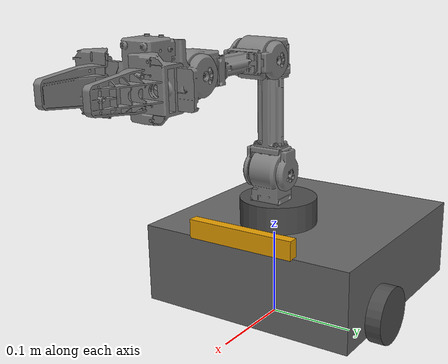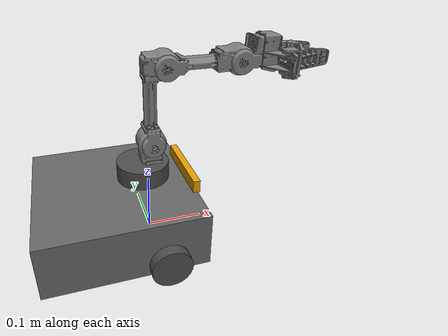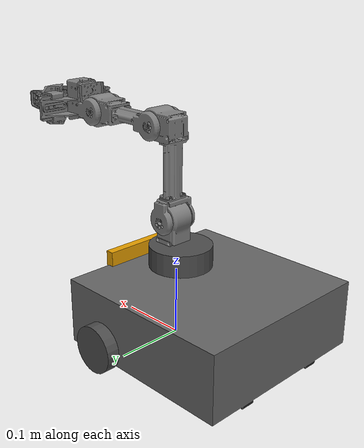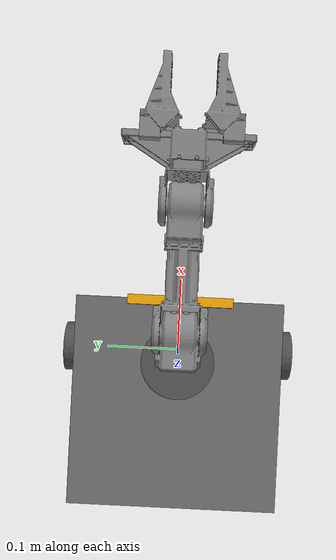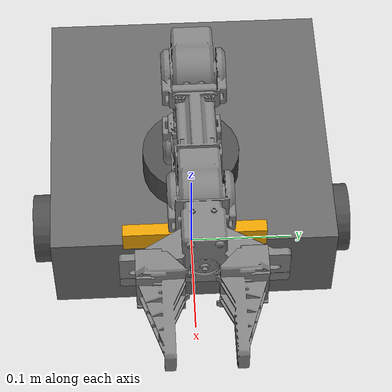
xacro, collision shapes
<?xml version="1.0"?>
<!-- Open_Manipulator Chain -->
<robot name="open_manipulator_chain_with_tb3" xmlns:xacro="http://www.ros.org/wiki/xacro">

  <!-- Include TurtleBot3 Waffle URDF -->
  <xacro:include filename="$(find turtlebot3_description)/urdf/turtlebot3_waffle_naked.urdf.xacro" />

  <!-- Include OpenManipulator Chain Gazebo Parameter -->
  <xacro:include filename="$(find open_manipulator_with_tb3)/urdf/open_manipulator_chain_with_tb3.gazebo.xacro" />

  <!-- Base fixed joint -->
  <joint name="base_fixed" type="fixed">
    <origin xyz="-0.005 0.0 0.091" rpy="0 0 0"/>
    <parent link="base_link"/>
    <child link="link1"/>
  </joint>

  <!-- Link 1 -->
  <link name="link1">
    <visual>
      <origin xyz="0 0 0" rpy="0 0 0"/>
      <geometry>
        <mesh filename="package://open_manipulator_description/meshes/chain_link1.stl" scale="0.001 0.001 0.001"/>
      </geometry>
      <material name="grey"/>
    </visual>

    <collision>
      <origin xyz="0 0 0" rpy="0 0 0"/>
      <geometry>
        <mesh filename="package://open_manipulator_description/meshes/chain_link1.stl" scale="0.001 0.001 0.001"/>
      </geometry>
    </collision>

    <inertial>
      <origin xyz="0 0 0" />
      <mass value="0.082" />
      <inertia ixx="0.1" ixy="0.0" ixz="0.0"
               iyy="0.1" iyz="0.0"
               izz="0.1" />
    </inertial>
  </link>

  <!-- Joint 1 -->
  <joint name="joint1" type="revolute">
    <parent link="link1"/>
    <child link="link2"/>
    <origin xyz="0.012 0.0 0.017" rpy="0 0 0"/>
    <axis xyz="0 0 1"/>
    <limit velocity="6.5" effort="1000" lower="${-pi*0.9}" upper="${pi*0.9}" />
  </joint>

  <!-- Transmission 1 -->
  <transmission name="tran1">
    <type>transmission_interface/SimpleTransmission</type>
    <joint name="joint1">
      <hardwareInterface>hardware_interface/EffortJointInterface</hardwareInterface>
    </joint>
    <actuator name="motor1">
      <hardwareInterface>hardware_interface/EffortJointInterface</hardwareInterface>
      <mechanicalReduction>1</mechanicalReduction>
    </actuator>
  </transmission>

  <!--  Link 2 -->
  <link name="link2">
    <visual>
      <origin xyz="0 0 0.018" rpy="0 0 0"/>
      <geometry>
        <mesh filename="package://open_manipulator_description/meshes/chain_link2.stl" scale="0.001 0.001 0.001"/>
      </geometry>
      <material name="grey"/>
    </visual>

    <collision>
      <origin xyz="0 0 0.018" rpy="0 0 0"/>
      <geometry>
        <mesh filename="package://open_manipulator_description/meshes/chain_link2.stl" scale="0.001 0.001 0.001"/>
      </geometry>
    </collision>

    <inertial>
      <origin xyz="0 0 0" />
      <mass value="0.098" />
      <inertia ixx="0.1" ixy="0.0" ixz="0.0"
               iyy="0.1" iyz="0.0"
               izz="0.1" />
    </inertial>
  </link>

  <!--  Joint 2 -->
  <joint name="joint2" type="revolute">
    <parent link="link2"/>
    <child link="link3"/>
    <origin xyz="0.0 0.0 0.058" rpy="0 0 0"/>
    <axis xyz="0 1 0"/>
    <limit velocity="6.5" effort="1000" lower="${-pi*0.5}" upper="${pi*0.5}" />
  </joint>

  <!-- Transmission 2 -->
  <transmission name="tran2">
    <type>transmission_interface/SimpleTransmission</type>
    <joint name="joint2">
      <hardwareInterface>hardware_interface/EffortJointInterface</hardwareInterface>
    </joint>
    <actuator name="motor2">
      <hardwareInterface>hardware_interface/EffortJointInterface</hardwareInterface>
      <mechanicalReduction>1</mechanicalReduction>
    </actuator>
  </transmission>

  <!--  Link 3 -->
  <link name="link3">
    <visual>
      <origin xyz="0 0 0" rpy="0 0 0"/>
      <geometry>
        <mesh filename="package://open_manipulator_description/meshes/chain_link3.stl" scale="0.001 0.001 0.001"/>
      </geometry>
      <material name="grey"/>
    </visual>

    <collision>
      <origin xyz="0 0 0" rpy="0 0 0"/>
      <geometry>
        <mesh filename="package://open_manipulator_description/meshes/chain_link3.stl" scale="0.001 0.001 0.001"/>
      </geometry>
    </collision>

    <inertial>
      <origin xyz="0 0 0" />
      <mass value="0.136" />
      <inertia ixx="0.1" ixy="0.0" ixz="0.0"
               iyy="0.1" iyz="0.0"
               izz="0.1" />
    </inertial>
  </link>

  <!--  Joint 3 -->
  <joint name="joint3" type="revolute">
    <parent link="link3"/>
    <child link="link4"/>
    <origin xyz="0.024 0 0.128" rpy="0 0 0"/>
    <axis xyz="0 1 0"/>
    <limit velocity="6.5" effort="1000" lower="${-pi*0.3}" upper="${pi*0.44}" />
  </joint>

  <!-- Transmission 3 -->
  <transmission name="tran3">
    <type>transmission_interface/SimpleTransmission</type>
    <joint name="joint3">
      <hardwareInterface>hardware_interface/EffortJointInterface</hardwareInterface>
    </joint>
    <actuator name="motor3">
      <hardwareInterface>hardware_interface/EffortJointInterface</hardwareInterface>
      <mechanicalReduction>1</mechanicalReduction>
    </actuator>
  </transmission>

  <!--  Link 4 -->
  <link name="link4">
    <visual>
      <origin xyz="0 0 0" rpy="0 0 0"/>
      <geometry>
        <mesh filename="package://open_manipulator_description/meshes/chain_link4.stl" scale="0.001 0.001 0.001"/>
      </geometry>
      <material name="grey"/>
    </visual>

    <collision>
      <origin xyz="0 0 0" rpy="0 0 0"/>
      <geometry>
        <mesh filename="package://open_manipulator_description/meshes/chain_link4.stl" scale="0.001 0.001 0.001"/>
      </geometry>
    </collision>

    <inertial>
      <origin xyz="0 0 0" />
      <mass value="0.131" />
      <inertia ixx="0.1" ixy="0.0" ixz="0.0"
               iyy="0.1" iyz="0.0"
               izz="0.1" />
    </inertial>
  </link>

  <!--  Joint 4 -->
  <joint name="joint4" type="revolute">
    <parent link="link4"/>
    <child link="link5"/>
    <origin xyz="0.124 0.0 0.0" rpy="0 0 0"/>
    <axis xyz="0 1 0"/>
    <limit velocity="6.5" effort="1000" lower="${-pi*0.4}" upper="${pi*0.5}" />
  </joint>

  <!-- Transmission 4 -->
  <transmission name="tran4">
    <type>transmission_interface/SimpleTransmission</type>
    <joint name="joint4">
      <hardwareInterface>hardware_interface/EffortJointInterface</hardwareInterface>
    </joint>
    <actuator name="motor4">
      <hardwareInterface>hardware_interface/EffortJointInterface</hardwareInterface>
      <mechanicalReduction>1</mechanicalReduction>
    </actuator>
  </transmission>

  <!--  Link 5 -->
  <link name="link5">
    <visual>
      <origin xyz="0 0 0" rpy="0 0 0"/>
      <geometry>
        <mesh filename="package://open_manipulator_description/meshes/chain_link5.stl" scale="0.001 0.001 0.001"/>
      </geometry>
      <material name="grey"/>
    </visual>

    <collision>
      <origin xyz="0 0 0" rpy="0 0 0"/>
      <geometry>
        <mesh filename="package://open_manipulator_description/meshes/chain_link5.stl" scale="0.001 0.001 0.001"/>
      </geometry>
    </collision>

    <inertial>
      <origin xyz="0 0 0" />
      <mass value="0.141" />
      <inertia ixx="0.1" ixy="0.0" ixz="0.0"
               iyy="0.1" iyz="0.0"
               izz="0.1" />
    </inertial>
  </link>

  <!--  Grip link -->
  <link name="grip_link">
    <visual>
      <origin xyz="0.028 0.0246 0" rpy="0 0 0"/>
      <geometry>
        <mesh filename="package://open_manipulator_description/meshes/chain_link_grip_l.stl" scale="0.001 0.001 0.001"/>
      </geometry>
      <material name="grey"/>
    </visual>

    <collision>
      <origin xyz="0.028 0.0246 0" rpy="0 0 0"/>
      <geometry>
        <mesh filename="package://open_manipulator_description/meshes/chain_link_grip_l.stl" scale="0.001 0.001 0.001"/>
      </geometry>
    </collision>

    <inertial>
      <origin xyz="0 0 0" />
      <mass value="0.017" />
      <inertia ixx="0.1" ixy="0.0" ixz="0.0"
               iyy="0.1" iyz="0.0"
               izz="0.1" />
    </inertial>
  </link>

  <!--  Grip joint -->
  <joint name="grip_joint" type="prismatic">
    <parent link="link5"/>
    <child link="grip_link"/>
    <origin xyz="0.0536 0.0 0.0" rpy="0 0 0"/>
    <axis xyz="0 -1 0"/>
    <limit velocity="3.5" effort="100" lower="-0.015" upper="0.0105" />
  </joint>

  <!-- Transmission 5 -->
  <transmission name="tran5">
    <type>transmission_interface/SimpleTransmission</type>
    <joint name="grip_joint">
      <hardwareInterface>hardware_interface/EffortJointInterface</hardwareInterface>
    </joint>
    <actuator name="motor7">
      <hardwareInterface>hardware_interface/EffortJointInterface</hardwareInterface>
      <mechanicalReduction>1</mechanicalReduction>
    </actuator>
  </transmission>

  <!--  Grip link sub -->
  <link name="grip_link_sub">
    <visual>
      <origin xyz="0.028 -0.0246 0" rpy="0 0 0"/>
      <geometry>
        <mesh filename="package://open_manipulator_description/meshes/chain_link_grip_r.stl" scale="0.001 0.001 0.001"/>
      </geometry>
      <material name="grey"/>
    </visual>

    <collision>
      <origin xyz="0.028 -0.0246 0" rpy="0 0 0"/>
      <geometry>
        <mesh filename="package://open_manipulator_description/meshes/chain_link_grip_r.stl" scale="0.001 0.001 0.001"/>
      </geometry>
    </collision>

    <inertial>
      <origin xyz="0 0 0" />
      <mass value="0.017" />
      <inertia ixx="0.1" ixy="0.0" ixz="0.0"
               iyy="0.1" iyz="0.0"
               izz="0.1" />
    </inertial>
  </link>

  <!--  Grip joint sub -->
  <joint name="grip_joint_sub" type="prismatic">
    <parent link="link5"/>
    <child link="grip_link_sub"/>
    <origin xyz="0.0536 0 0" rpy="0 0 0"/>
    <axis xyz="0 1 0"/>
    <limit velocity="3.5" effort="100" lower="-0.015" upper="0.0105" />
  </joint>

  <!-- Transmission 6 -->
  <transmission name="tran6">
    <type>transmission_interface/SimpleTransmission</type>
    <joint name="grip_joint_sub">
      <hardwareInterface>hardware_interface/EffortJointInterface</hardwareInterface>
    </joint>
    <actuator name="motor8">
      <hardwareInterface>hardware_interface/EffortJointInterface</hardwareInterface>
      <mechanicalReduction>1</mechanicalReduction>
    </actuator>
  </transmission>

</robot>

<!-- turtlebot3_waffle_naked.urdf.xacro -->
<robot name="turtlebot3_waffle" xmlns:xacro="http://ros.org/wiki/xacro">
  <xacro:include filename="$(find turtlebot3_description)/urdf/common_properties.xacro"/>
  <xacro:include filename="$(find turtlebot3_description)/urdf/turtlebot3_waffle.gazebo.xacro"/>

  <xacro:property name="r200_cam_rgb_px" value="0.005"/>
  <xacro:property name="r200_cam_rgb_py" value="0.018"/>
  <xacro:property name="r200_cam_rgb_pz" value="0.013"/>
  <xacro:property name="r200_cam_depth_offset" value="0.01"/>

  <link name="base_footprint"/>

  <joint name="base_joint" type="fixed">
    <parent link="base_footprint"/>
    <child link="base_link" />
    <origin xyz="0 0 0.010" rpy="0 0 0"/>
  </joint>

  <link name="base_link">
    <visual>
      <origin xyz="-0.064 0 0.0" rpy="0 0 0"/>
      <geometry>
        <mesh filename="package://turtlebot3_description/meshes/bases/waffle_base_naked.stl" scale="0.001 0.001 0.001"/>
      </geometry>
      <material name="light_black"/>
    </visual>

    <collision>
      <origin xyz="-0.064 0 0.047" rpy="0 0 0"/>
      <geometry>
        <box size="0.266 0.266 0.094"/>
      </geometry>
    </collision>

    <inertial>
      <origin xyz="0 0 0" rpy="0 0 0"/>
      <mass value="1.3729096e+00"/>
      <inertia ixx="8.7002718e-03" ixy="-4.7576583e-05" ixz="1.1160499e-04"
               iyy="8.6195418e-03" iyz="-3.5422299e-06"
               izz="1.4612727e-02" />
    </inertial>
  </link>

  <joint name="wheel_left_joint" type="continuous">
    <parent link="base_link"/>
    <child link="wheel_left_link"/>
    <origin xyz="0.0 0.144 0.023" rpy="-1.57 0 0"/>
    <axis xyz="0 0 1"/>
  </joint>

  <link name="wheel_left_link">
    <visual>
      <origin xyz="0 0 0" rpy="1.57 0 0"/>
      <geometry>
        <mesh filename="package://turtlebot3_description/meshes/wheels/left_tire.stl" scale="0.001 0.001 0.001"/>
      </geometry>
      <material name="dark"/>
    </visual>

    <collision>
      <origin xyz="0 0.001 0" rpy="0 0 0"/>
      <geometry>
        <cylinder length="0.018" radius="0.033"/>
      </geometry>
    </collision>

    <inertial>
      <origin xyz="0 0 0" />
      <mass value="2.8498940e-02" />
      <inertia ixx="1.1175580e-05" ixy="-4.2369783e-11" ixz="-5.9381719e-09"
               iyy="1.1192413e-05" iyz="-1.4400107e-11"
               izz="2.0712558e-05" />
      </inertial>
  </link>

  <joint name="wheel_right_joint" type="continuous">
    <parent link="base_link"/>
    <child link="wheel_right_link"/>
    <origin xyz="0.0 -0.144 0.023" rpy="-1.57 0 0"/>
    <axis xyz="0 0 1"/>
  </joint>

  <link name="wheel_right_link">
    <visual>
      <origin xyz="0 0 0" rpy="1.57 0 0"/>
      <geometry>
        <mesh filename="package://turtlebot3_description/meshes/wheels/right_tire.stl" scale="0.001 0.001 0.001"/>
      </geometry>
      <material name="dark"/>
    </visual>

    <collision>
      <origin xyz="0 0.001 0" rpy="0 0 0"/>
      <geometry>
        <cylinder length="0.018" radius="0.033"/>
      </geometry>
    </collision>

    <inertial>
      <origin xyz="0 0 0" />
      <mass value="2.8498940e-02" />
      <inertia ixx="1.1175580e-05" ixy="-4.2369783e-11" ixz="-5.9381719e-09"
               iyy="1.1192413e-05" iyz="-1.4400107e-11"
               izz="2.0712558e-05" />
      </inertial>
  </link>

  <joint name="caster_back_right_joint" type="fixed">
    <parent link="base_link"/>
    <child link="caster_back_right_link"/>
    <origin xyz="-0.177 -0.064 -0.004" rpy="-1.57 0 0"/>
  </joint>

  <link name="caster_back_right_link">
    <collision>
      <origin xyz="0 0.001 0" rpy="0 0 0"/>
      <geometry>
        <box size="0.030 0.009 0.020"/>
      </geometry>
    </collision>

    <inertial>
      <origin xyz="0 0 0" />
      <mass value="0.005" />
      <inertia ixx="0.001" ixy="0.0" ixz="0.0"
               iyy="0.001" iyz="0.0"
               izz="0.001" />
    </inertial>
  </link>

  <joint name="caster_back_left_joint" type="fixed">
    <parent link="base_link"/>
    <child link="caster_back_left_link"/>
    <origin xyz="-0.177 0.064 -0.004" rpy="-1.57 0 0"/>
  </joint>

  <link name="caster_back_left_link">
    <collision>
      <origin xyz="0 0.001 0" rpy="0 0 0"/>
      <geometry>
        <box size="0.030 0.009 0.020"/>
      </geometry>
    </collision>

    <inertial>
      <origin xyz="0 0 0" />
      <mass value="0.005" />
      <inertia ixx="0.001" ixy="0.0" ixz="0.0"
               iyy="0.001" iyz="0.0"
               izz="0.001" />
    </inertial>
  </link>

  <joint name="imu_joint" type="fixed">
    <parent link="base_link"/>
    <child link="imu_link"/>
    <origin xyz="0.0 0 0.068" rpy="0 0 0"/>
  </joint>

  <link name="imu_link"/>

  <joint name="scan_joint" type="fixed">
    <parent link="base_link"/>
    <child link="base_scan"/>
    <origin xyz="-0.024 0 0.122" rpy="0 0 0"/>
  </joint>

  <link name="base_scan">
    <visual>
      <origin xyz="0 0 0.0" rpy="0 0 0"/>
      <geometry>
        <mesh filename="package://turtlebot3_description/meshes/sensors/lds.stl" scale="0.001 0.001 0.001"/>
      </geometry>
      <material name="dark"/>
    </visual>

    <collision>
      <origin xyz="0.015 0 -0.0065" rpy="0 0 0"/>
      <geometry>
        <cylinder length="0.0315" radius="0.045"/>
      </geometry>
    </collision>

    <inertial>
      <mass value="0.114" />
      <origin xyz="0 0 0" />
      <inertia ixx="0.001" ixy="0.0" ixz="0.0"
               iyy="0.001" iyz="0.0"
               izz="0.001" />
    </inertial>
  </link>

  <joint name="camera_joint" type="fixed">
    <origin xyz="0.064 -0.065 0.094" rpy="0 0 0"/>
    <parent link="base_link"/>
    <child link="camera_link"/>
  </joint>

  <link name="camera_link">
    <visual>
     <origin xyz="0 0 0" rpy="1.57 0 1.57"/>
      <geometry>
       <mesh filename="package://turtlebot3_description/meshes/sensors/r200.dae" />
      </geometry>
    </visual>
    <collision>
      <origin xyz="0.003 0.065 0.010" rpy="0 0 0"/>
      <geometry>
        <box size="0.012 0.132 0.022"/>
      </geometry>
    </collision>

    <!-- This inertial field needs doesn't contain reliable data!! -->
  </link>

  <joint name="camera_rgb_joint" type="fixed">
    <origin xyz="${r200_cam_rgb_px} ${r200_cam_rgb_py} ${r200_cam_rgb_pz}" rpy="0 0 0"/>
    <parent link="camera_link"/>
    <child link="camera_rgb_frame"/>
  </joint>
  <link name="camera_rgb_frame"/>

  <joint name="camera_rgb_optical_joint" type="fixed">
    <origin xyz="0 0 0" rpy="-1.57 0 -1.57"/>
    <parent link="camera_rgb_frame"/>
    <child link="camera_rgb_optical_frame"/>
  </joint>
  <link name="camera_rgb_optical_frame"/>

  <joint name="camera_depth_joint" type="fixed">
    <origin xyz="${r200_cam_rgb_px} ${r200_cam_rgb_py + r200_cam_depth_offset} ${r200_cam_rgb_pz}" rpy="0 0 0"/>
    <parent link="camera_link"/>
    <child link="camera_depth_frame"/>
  </joint>
  <link name="camera_depth_frame"/>

  <joint name="camera_depth_optical_joint" type="fixed">
    <origin xyz="0 0 0" rpy="-1.57 0 -1.57"/>
    <parent link="camera_depth_frame"/>
    <child link="camera_depth_optical_frame"/>
  </joint>
  <link name="camera_depth_optical_frame"/>

</robot>

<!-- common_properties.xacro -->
<robot name="xacro_properties" xmlns:xacro="http://ros.org/wiki/xacro">

  <!-- Init colour -->
  <material name="black">
      <color rgba="0.0 0.0 0.0 1.0"/>
  </material>

  <material name="dark">
    <color rgba="0.3 0.3 0.3 1.0"/>
  </material>
  <material name="light_black">
    <color rgba="0.4 0.4 0.4 1.0"/>
  </material>

  <material name="blue">
    <color rgba="0.0 0.0 0.8 1.0"/>
  </material>

  <material name="green">
    <color rgba="0.0 0.8 0.0 1.0"/>
  </material>

  <material name="grey">
    <color rgba="0.5 0.5 0.5 1.0"/>
  </material>

  <material name="light_grey">
    <color rgba="${211/255} ${211/255} ${211/255} 1.0"/>
  </material>

  <material name="orange">
    <color rgba="${255/255} ${108/255} ${10/255} 1.0"/>
  </material>

  <material name="brown">
    <color rgba="${222/255} ${207/255} ${195/255} 1.0"/>
  </material>

  <material name="red">
    <color rgba="0.8 0.0 0.0 1.0"/>
  </material>

  <material name="white">
    <color rgba="1.0 1.0 1.0 1.0"/>
  </material>
</robot>
